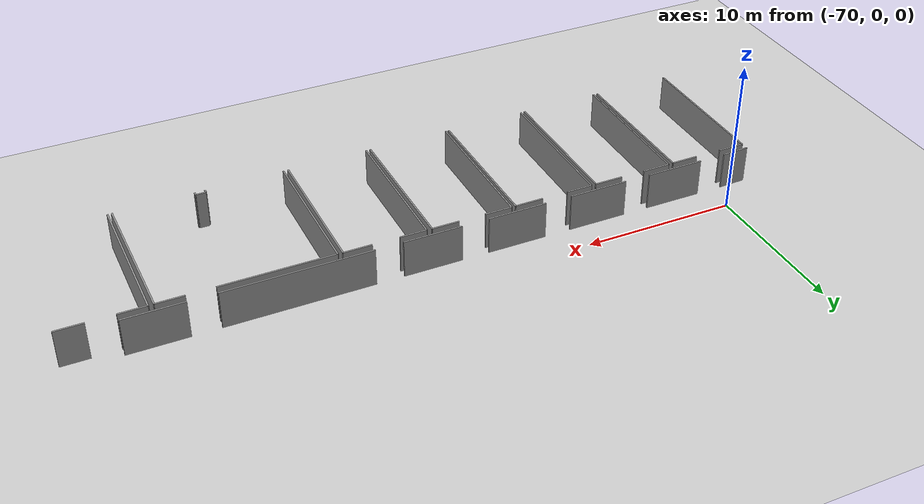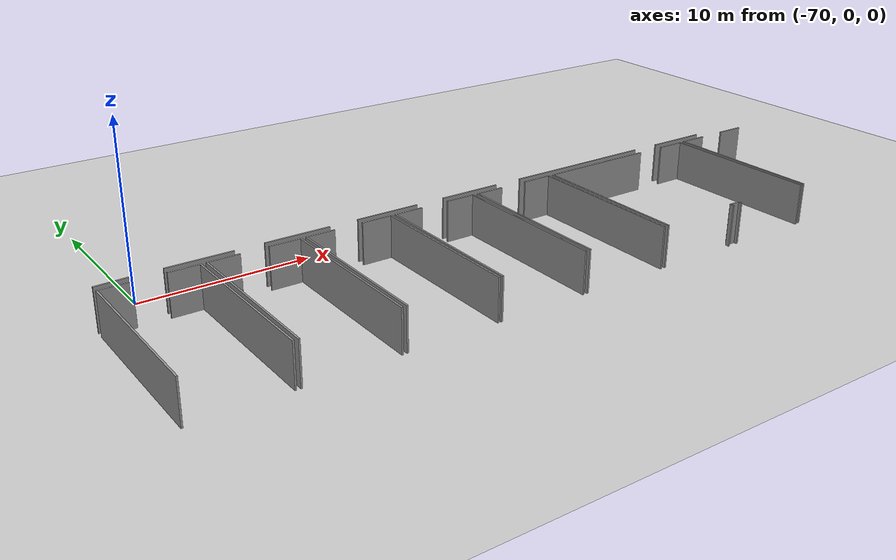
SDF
<sdf version="1.6">
 <world name="default">
  <model name="ground_plane">
   <static>1</static>
   <link name="link">
    <collision name="collision">
     <geometry><plane><normal>0 0 1</normal><size>100 100</size></plane></geometry>
     <surface><friction><ode><mu>100</mu><mu2>50</mu2></ode></friction></surface>
    </collision>
    <visual name="visual">
     <cast_shadows>0</cast_shadows>
     <geometry><plane><normal>0 0 1</normal><size>100 100</size></plane></geometry>
     <material>
      <script><uri>file://media/materials/scripts/gazebo.material</uri><name>Gazebo/Grey</name></script>
     </material>
    </visual>
   </link>
  </model>
  <model name="0510045907_A_40_1_105">
   <static>1</static>
   <link name="Wall_53">
    <collision name="Wall_53_Collision">
     <geometry><box><size>3.80115771301 0.1 2.5</size></box></geometry>
     <pose>1.9005788565 0 1.25 0 0 0</pose>
    </collision>
    <visual name="Wall_53_Visual">
     <pose>1.9005788565 0 1.25 0 0 0</pose>
     <geometry><box><size>3.80115771301 0.1 2.5</size></box></geometry>
     <material>
      <script><uri>file://media/materials/scripts/gazebo.material</uri><name>Gazebo/Grey</name></script>
      <ambient>1 1 1 1</ambient>
     </material>
    </visual>
    <pose>52.0079719712 -14.2241291764 0 0 0 3.14159265359</pose>
   </link>
   <link name="Wall_54">
    <collision name="Wall_54_Collision">
     <geometry><box><size>9.44120036559 0.1 2.5</size></box></geometry>
     <pose>4.7206001828 0 1.25 0 0 0</pose>
    </collision>
    <visual name="Wall_54_Visual">
     <pose>4.7206001828 0 1.25 0 0 0</pose>
     <geometry><box><size>9.44120036559 0.1 2.5</size></box></geometry>
     <material>
      <script><uri>file://media/materials/scripts/gazebo.material</uri><name>Gazebo/Grey</name></script>
      <ambient>1 1 1 1</ambient>
     </material>
    </visual>
    <pose>46.4032192546 -14.2241291764 0 0 0 3.14159265359</pose>
   </link>
   <link name="Wall_55">
    <collision name="Wall_55_Collision">
     <geometry><box><size>3.80090382858 0.1 2.5</size></box></geometry>
     <pose>1.90045191429 0 1.25 0 0 0</pose>
    </collision>
    <visual name="Wall_55_Visual">
     <pose>1.90045191429 0 1.25 0 0 0</pose>
     <geometry><box><size>3.80090382858 0.1 2.5</size></box></geometry>
     <material>
      <script><uri>file://media/materials/scripts/gazebo.material</uri><name>Gazebo/Grey</name></script>
      <ambient>1 1 1 1</ambient>
     </material>
    </visual>
    <pose>35.1909210927 -14.2241291764 0 0 0 3.14159265359</pose>
   </link>
   <link name="Wall_56">
    <collision name="Wall_56_Collision">
     <geometry><box><size>3.87275312278 0.1 2.5</size></box></geometry>
     <pose>1.93637656139 0 1.25 0 0 0</pose>
    </collision>
    <visual name="Wall_56_Visual">
     <pose>1.93637656139 0 1.25 0 0 0</pose>
     <geometry><box><size>3.87275312278 0.1 2.5</size></box></geometry>
     <material>
      <script><uri>file://media/materials/scripts/gazebo.material</uri><name>Gazebo/Grey</name></script>
      <ambient>1 1 1 1</ambient>
     </material>
    </visual>
    <pose>29.6095257439 -14.2241291764 0 0 0 3.14159265359</pose>
   </link>
   <link name="Wall_57">
    <collision name="Wall_57_Collision">
     <geometry><box><size>3.87783081141 0.1 2.5</size></box></geometry>
     <pose>1.93891540571 0 1.25 0 0 0</pose>
    </collision>
    <visual name="Wall_57_Visual">
     <pose>1.93891540571 0 1.25 0 0 0</pose>
     <geometry><box><size>3.87783081141 0.1 2.5</size></box></geometry>
     <material>
      <script><uri>file://media/materials/scripts/gazebo.material</uri><name>Gazebo/Grey</name></script>
      <ambient>1 1 1 1</ambient>
     </material>
    </visual>
    <pose>23.9989336854 -14.2241291764 0 0 0 3.14159265359</pose>
   </link>
   <link name="Wall_58">
    <collision name="Wall_58_Collision">
     <geometry><box><size>3.80090382858 0.1 2.5</size></box></geometry>
     <pose>1.90045191429 0 1.25 0 0 0</pose>
    </collision>
    <visual name="Wall_58_Visual">
     <pose>1.90045191429 0 1.25 0 0 0</pose>
     <geometry><box><size>3.80090382858 0.1 2.5</size></box></geometry>
     <material>
      <script><uri>file://media/materials/scripts/gazebo.material</uri><name>Gazebo/Grey</name></script>
      <ambient>1 1 1 1</ambient>
     </material>
    </visual>
    <pose>18.4124606479 -14.2241291764 0 0 0 3.14159265359</pose>
   </link>
   <link name="Wall_59">
    <collision name="Wall_59_Collision">
     <geometry><box><size>1.81741026124 0.1 2.5</size></box></geometry>
     <pose>0.90870513062 0 1.25 0 0 0</pose>
    </collision>
    <visual name="Wall_59_Visual">
     <pose>0.90870513062 0 1.25 0 0 0</pose>
     <geometry><box><size>1.81741026124 0.1 2.5</size></box></geometry>
     <material>
      <script><uri>file://media/materials/scripts/gazebo.material</uri><name>Gazebo/Grey</name></script>
      <ambient>1 1 1 1</ambient>
     </material>
    </visual>
    <pose>12.8429978674 -14.2241291764 0 0 0 -3.09925220137</pose>
   </link>
   <link name="Wall_60">
    <collision name="Wall_60_Collision">
     <geometry><box><size>9.62399715649 0.1 2.5</size></box></geometry>
     <pose>4.81199857825 0 1.25 0 0 0</pose>
    </collision>
    <visual name="Wall_60_Visual">
     <pose>4.81199857825 0 1.25 0 0 0</pose>
     <geometry><box><size>9.62399715649 0.1 2.5</size></box></geometry>
     <material>
      <script><uri>file://media/materials/scripts/gazebo.material</uri><name>Gazebo/Grey</name></script>
      <ambient>1 1 1 1</ambient>
     </material>
    </visual>
    <pose>11.0599675028 -24.3960089367 0 0 0 1.57079632679</pose>
   </link>
   <link name="Wall_61">
    <collision name="Wall_61_Collision">
     <geometry><box><size>1.75180257947 0.1 2.5</size></box></geometry>
     <pose>0.875901289733 0 1.25 0 0 0</pose>
    </collision>
    <visual name="Wall_61_Visual">
     <pose>0.875901289733 0 1.25 0 0 0</pose>
     <geometry><box><size>1.75180257947 0.1 2.5</size></box></geometry>
     <material>
      <script><uri>file://media/materials/scripts/gazebo.material</uri><name>Gazebo/Grey</name></script>
      <ambient>1 1 1 1</ambient>
     </material>
    </visual>
    <pose>11.0599675028 -14.7720117802 0 0 0 0.0</pose>
   </link>
   <link name="Wall_62">
    <collision name="Wall_62_Collision">
     <geometry><box><size>1.76602010765 0.1 2.5</size></box></geometry>
     <pose>0.883010053823 0 1.25 0 0 0</pose>
    </collision>
    <visual name="Wall_62_Visual">
     <pose>0.883010053823 0 1.25 0 0 0</pose>
     <geometry><box><size>1.76602010765 0.1 2.5</size></box></geometry>
     <material>
      <script><uri>file://media/materials/scripts/gazebo.material</uri><name>Gazebo/Grey</name></script>
      <ambient>1 1 1 1</ambient>
     </material>
    </visual>
    <pose>14.5683964659 -14.7720117802 0 0 0 0.0</pose>
   </link>
   <link name="Wall_63">
    <collision name="Wall_63_Collision">
     <geometry><box><size>9.6241180467 0.1 2.5</size></box></geometry>
     <pose>4.81205902335 0 1.25 0 0 0</pose>
    </collision>
    <visual name="Wall_63_Visual">
     <pose>4.81205902335 0 1.25 0 0 0</pose>
     <geometry><box><size>9.6241180467 0.1 2.5</size></box></geometry>
     <material>
      <script><uri>file://media/materials/scripts/gazebo.material</uri><name>Gazebo/Grey</name></script>
      <ambient>1 1 1 1</ambient>
     </material>
    </visual>
    <pose>16.3344165736 -14.7720117802 0 0 0 -1.5657841019</pose>
   </link>
   <link name="Wall_64">
    <collision name="Wall_64_Collision">
     <geometry><box><size>9.65624047933 0.1 2.5</size></box></geometry>
     <pose>4.82812023967 0 1.25 0 0 0</pose>
    </collision>
    <visual name="Wall_64_Visual">
     <pose>4.82812023967 0 1.25 0 0 0</pose>
     <geometry><box><size>9.65624047933 0.1 2.5</size></box></geometry>
     <material>
      <script><uri>file://media/materials/scripts/gazebo.material</uri><name>Gazebo/Grey</name></script>
      <ambient>1 1 1 1</ambient>
     </material>
    </visual>
    <pose>16.6687823703 -24.4104803493 0 0 0 1.57079632679</pose>
   </link>
   <link name="Wall_65">
    <collision name="Wall_65_Collision">
     <geometry><box><size>1.82365187367 0.1 2.5</size></box></geometry>
     <pose>0.911825936834 0 1.25 0 0 0</pose>
    </collision>
    <visual name="Wall_65_Visual">
     <pose>0.911825936834 0 1.25 0 0 0</pose>
     <geometry><box><size>1.82365187367 0.1 2.5</size></box></geometry>
     <material>
      <script><uri>file://media/materials/scripts/gazebo.material</uri><name>Gazebo/Grey</name></script>
      <ambient>1 1 1 1</ambient>
     </material>
    </visual>
    <pose>16.6687823703 -14.75423987 0 0 0 0.0</pose>
   </link>
   <link name="Wall_66">
    <collision name="Wall_66_Collision">
     <geometry><box><size>1.85437188992 0.1 2.5</size></box></geometry>
     <pose>0.927185944958 0 1.25 0 0 0</pose>
    </collision>
    <visual name="Wall_66_Visual">
     <pose>0.927185944958 0 1.25 0 0 0</pose>
     <geometry><box><size>1.85437188992 0.1 2.5</size></box></geometry>
     <material>
      <script><uri>file://media/materials/scripts/gazebo.material</uri><name>Gazebo/Grey</name></script>
      <ambient>1 1 1 1</ambient>
     </material>
    </visual>
    <pose>20.1096780745 -14.75423987 0 0 0 0.0</pose>
   </link>
   <link name="Wall_67">
    <collision name="Wall_67_Collision">
     <geometry><box><size>9.65626516418 0.1 2.5</size></box></geometry>
     <pose>4.82813258209 0 1.25 0 0 0</pose>
    </collision>
    <visual name="Wall_67_Visual">
     <pose>4.82813258209 0 1.25 0 0 0</pose>
     <geometry><box><size>9.65626516418 0.1 2.5</size></box></geometry>
     <material>
      <script><uri>file://media/materials/scripts/gazebo.material</uri><name>Gazebo/Grey</name></script>
      <ambient>1 1 1 1</ambient>
     </material>
    </visual>
    <pose>21.9640499645 -14.75423987 0 0 0 -1.56853519587</pose>
   </link>
   <link name="Wall_68">
    <collision name="Wall_68_Collision">
     <geometry><box><size>9.63973799127 0.1 2.5</size></box></geometry>
     <pose>4.81986899563 0 1.25 0 0 0</pose>
    </collision>
    <visual name="Wall_68_Visual">
     <pose>4.81986899563 0 1.25 0 0 0</pose>
     <geometry><box><size>9.63973799127 0.1 2.5</size></box></geometry>
     <material>
      <script><uri>file://media/materials/scripts/gazebo.material</uri><name>Gazebo/Grey</name></script>
      <ambient>1 1 1 1</ambient>
     </material>
    </visual>
    <pose>22.2775972377 -24.3889001726 0 0 0 1.57079632679</pose>
   </link>
   <link name="Wall_69">
    <collision name="Wall_69_Collision">
     <geometry><box><size>1.71702041231 0.1 2.5</size></box></geometry>
     <pose>0.858510206154 0 1.25 0 0 0</pose>
    </collision>
    <visual name="Wall_69_Visual">
     <pose>0.858510206154 0 1.25 0 0 0</pose>
     <geometry><box><size>1.71702041231 0.1 2.5</size></box></geometry>
     <material>
      <script><uri>file://media/materials/scripts/gazebo.material</uri><name>Gazebo/Grey</name></script>
      <ambient>1 1 1 1</ambient>
     </material>
    </visual>
    <pose>22.2775972377 -14.7491621814 0 0 0 0.0</pose>
   </link>
   <link name="Wall_70">
    <collision name="Wall_70_Collision">
     <geometry><box><size>1.84396262821 0.1 2.5</size></box></geometry>
     <pose>0.921981314106 0 1.25 0 0 0</pose>
    </collision>
    <visual name="Wall_70_Visual">
     <pose>0.921981314106 0 1.25 0 0 0</pose>
     <geometry><box><size>1.84396262821 0.1 2.5</size></box></geometry>
     <material>
      <script><uri>file://media/materials/scripts/gazebo.material</uri><name>Gazebo/Grey</name></script>
      <ambient>1 1 1 1</ambient>
     </material>
    </visual>
    <pose>25.7131613689 -14.7491621814 0 0 0 0.0</pose>
   </link>
   <link name="Wall_71">
    <collision name="Wall_71_Collision">
     <geometry><box><size>9.63996399651 0.1 2.5</size></box></geometry>
     <pose>4.81998199826 0 1.25 0 0 0</pose>
    </collision>
    <visual name="Wall_71_Visual">
     <pose>4.81998199826 0 1.25 0 0 0</pose>
     <geometry><box><size>9.63996399651 0.1 2.5</size></box></geometry>
     <material>
      <script><uri>file://media/materials/scripts/gazebo.material</uri><name>Gazebo/Grey</name></script>
      <ambient>1 1 1 1</ambient>
     </material>
    </visual>
    <pose>27.5571239972 -14.7491621814 0 0 0 -1.56394874229</pose>
   </link>
   <link name="Wall_72">
    <collision name="Wall_72_Collision">
     <geometry><box><size>9.64887783081 0.1 2.5</size></box></geometry>
     <pose>4.82443891541 0 1.25 0 0 0</pose>
    </collision>
    <visual name="Wall_72_Visual">
     <pose>4.82443891541 0 1.25 0 0 0</pose>
     <geometry><box><size>9.64887783081 0.1 2.5</size></box></geometry>
     <material>
      <script><uri>file://media/materials/scripts/gazebo.material</uri><name>Gazebo/Grey</name></script>
      <ambient>1 1 1 1</ambient>
     </material>
    </visual>
    <pose>27.833350259 -24.3980400122 0 0 0 1.57079632679</pose>
   </link>
   <link name="Wall_73">
    <collision name="Wall_73_Collision">
     <geometry><box><size>1.75434142378 0.1 2.5</size></box></geometry>
     <pose>0.877170711892 0 1.25 0 0 0</pose>
    </collision>
    <visual name="Wall_73_Visual">
     <pose>0.877170711892 0 1.25 0 0 0</pose>
     <geometry><box><size>1.75434142378 0.1 2.5</size></box></geometry>
     <material>
      <script><uri>file://media/materials/scripts/gazebo.material</uri><name>Gazebo/Grey</name></script>
      <ambient>1 1 1 1</ambient>
     </material>
    </visual>
    <pose>27.833350259 -14.7491621814 0 0 0 0.0</pose>
   </link>
   <link name="Wall_74">
    <collision name="Wall_74_Collision">
     <geometry><box><size>1.77515994719 0.1 2.5</size></box></geometry>
     <pose>0.887579973596 0 1.25 0 0 0</pose>
    </collision>
    <visual name="Wall_74_Visual">
     <pose>0.887579973596 0 1.25 0 0 0</pose>
     <geometry><box><size>1.77515994719 0.1 2.5</size></box></geometry>
     <material>
      <script><uri>file://media/materials/scripts/gazebo.material</uri><name>Gazebo/Grey</name></script>
      <ambient>1 1 1 1</ambient>
     </material>
    </visual>
    <pose>31.344064182 -14.7491621814 0 0 0 0.0</pose>
   </link>
   <link name="Wall_75">
    <collision name="Wall_75_Collision">
     <geometry><box><size>9.64902513009 0.1 2.5</size></box></geometry>
     <pose>4.82451256504 0 1.25 0 0 0</pose>
    </collision>
    <visual name="Wall_75_Visual">
     <pose>4.82451256504 0 1.25 0 0 0</pose>
     <geometry><box><size>9.64902513009 0.1 2.5</size></box></geometry>
     <material>
      <script><uri>file://media/materials/scripts/gazebo.material</uri><name>Gazebo/Grey</name></script>
      <ambient>1 1 1 1</ambient>
     </material>
    </visual>
    <pose>33.1192241292 -14.7491621814 0 0 0 -1.56527079429</pose>
   </link>
   <link name="Wall_76">
    <collision name="Wall_76_Collision">
     <geometry><box><size>9.62298161877 0.1 2.5</size></box></geometry>
     <pose>4.81149080938 0 1.25 0 0 0</pose>
    </collision>
    <visual name="Wall_76_Visual">
     <pose>4.81149080938 0 1.25 0 0 0</pose>
     <geometry><box><size>9.62298161877 0.1 2.5</size></box></geometry>
     <material>
      <script><uri>file://media/materials/scripts/gazebo.material</uri><name>Gazebo/Grey</name></script>
      <ambient>1 1 1 1</ambient>
     </material>
    </visual>
    <pose>33.4622219965 -24.3960089367 0 0 0 1.57079632679</pose>
   </link>
   <link name="Wall_77">
    <collision name="Wall_77_Collision">
     <geometry><box><size>1.73428455367 0.1 2.5</size></box></geometry>
     <pose>0.867142276836 0 1.25 0 0 0</pose>
    </collision>
    <visual name="Wall_77_Visual">
     <pose>0.867142276836 0 1.25 0 0 0</pose>
     <geometry><box><size>1.73428455367 0.1 2.5</size></box></geometry>
     <material>
      <script><uri>file://media/materials/scripts/gazebo.material</uri><name>Gazebo/Grey</name></script>
      <ambient>1 1 1 1</ambient>
     </material>
    </visual>
    <pose>33.4622219965 -14.773027318 0 0 0 0.0</pose>
   </link>
   <link name="Wall_78">
    <collision name="Wall_78_Collision">
     <geometry><box><size>1.82923733117 0.1 2.5</size></box></geometry>
     <pose>0.914618665583 0 1.25 0 0 0</pose>
    </collision>
    <visual name="Wall_78_Visual">
     <pose>0.914618665583 0 1.25 0 0 0</pose>
     <geometry><box><size>1.82923733117 0.1 2.5</size></box></geometry>
     <material>
      <script><uri>file://media/materials/scripts/gazebo.material</uri><name>Gazebo/Grey</name></script>
      <ambient>1 1 1 1</ambient>
     </material>
    </visual>
    <pose>36.9371382147 -14.773027318 0 0 0 0.0</pose>
   </link>
   <link name="Wall_79">
    <collision name="Wall_79_Collision">
     <geometry><box><size>9.62298161877 0.1 2.5</size></box></geometry>
     <pose>4.81149080938 0 1.25 0 0 0</pose>
    </collision>
    <visual name="Wall_79_Visual">
     <pose>4.81149080938 0 1.25 0 0 0</pose>
     <geometry><box><size>9.62298161877 0.1 2.5</size></box></geometry>
     <material>
      <script><uri>file://media/materials/scripts/gazebo.material</uri><name>Gazebo/Grey</name></script>
      <ambient>1 1 1 1</ambient>
     </material>
    </visual>
    <pose>38.7663755459 -14.773027318 0 0 0 -1.57079632679</pose>
   </link>
   <link name="Wall_80">
    <collision name="Wall_80_Collision">
     <geometry><box><size>0.233827561694 0.1 2.5</size></box></geometry>
     <pose>0.116913780847 0 1.25 0 0 0</pose>
    </collision>
    <visual name="Wall_80_Visual">
     <pose>0.116913780847 0 1.25 0 0 0</pose>
     <geometry><box><size>0.233827561694 0.1 2.5</size></box></geometry>
     <material>
      <script><uri>file://media/materials/scripts/gazebo.material</uri><name>Gazebo/Grey</name></script>
      <ambient>1 1 1 1</ambient>
     </material>
    </visual>
    <pose>44.8339595816 -24.3889001726 0 0 0 1.57079632679</pose>
   </link>
   <link name="Wall_81">
    <collision name="Wall_81_Collision">
     <geometry><box><size>0.651213567584 0.1 2.5</size></box></geometry>
     <pose>0.325606783792 0 1.25 0 0 0</pose>
    </collision>
    <visual name="Wall_81_Visual">
     <pose>0.325606783792 0 1.25 0 0 0</pose>
     <geometry><box><size>0.651213567584 0.1 2.5</size></box></geometry>
     <material>
      <script><uri>file://media/materials/scripts/gazebo.material</uri><name>Gazebo/Grey</name></script>
      <ambient>1 1 1 1</ambient>
     </material>
    </visual>
    <pose>44.8339595816 -24.1550726109 0 0 0 3.14159265359</pose>
   </link>
   <link name="Wall_82">
    <collision name="Wall_82_Collision">
     <geometry><box><size>0.233827561694 0.1 2.5</size></box></geometry>
     <pose>0.116913780847 0 1.25 0 0 0</pose>
    </collision>
    <visual name="Wall_82_Visual">
     <pose>0.116913780847 0 1.25 0 0 0</pose>
     <geometry><box><size>0.233827561694 0.1 2.5</size></box></geometry>
     <material>
      <script><uri>file://media/materials/scripts/gazebo.material</uri><name>Gazebo/Grey</name></script>
      <ambient>1 1 1 1</ambient>
     </material>
    </visual>
    <pose>44.182746014 -24.1550726109 0 0 0 -1.57079632679</pose>
   </link>
   <link name="Wall_83">
    <collision name="Wall_83_Collision">
     <geometry><box><size>9.6016553265 0.1 2.5</size></box></geometry>
     <pose>4.80082766325 0 1.25 0 0 0</pose>
    </collision>
    <visual name="Wall_83_Visual">
     <pose>4.80082766325 0 1.25 0 0 0</pose>
     <geometry><box><size>9.6016553265 0.1 2.5</size></box></geometry>
     <material>
      <script><uri>file://media/materials/scripts/gazebo.material</uri><name>Gazebo/Grey</name></script>
      <ambient>1 1 1 1</ambient>
     </material>
    </visual>
    <pose>39.082207779 -24.3889001726 0 0 0 1.57079632679</pose>
   </link>
   <link name="Wall_84">
    <collision name="Wall_84_Collision">
     <geometry><box><size>7.26566466944 0.1 2.5</size></box></geometry>
     <pose>3.63283233472 0 1.25 0 0 0</pose>
    </collision>
    <visual name="Wall_84_Visual">
     <pose>3.63283233472 0 1.25 0 0 0</pose>
     <geometry><box><size>7.26566466944 0.1 2.5</size></box></geometry>
     <material>
      <script><uri>file://media/materials/scripts/gazebo.material</uri><name>Gazebo/Grey</name></script>
      <ambient>1 1 1 1</ambient>
     </material>
    </visual>
    <pose>39.082207779 -14.7872448461 0 0 0 0.0</pose>
   </link>
   <link name="Wall_85">
    <collision name="Wall_85_Collision">
     <geometry><box><size>1.77820656037 0.1 2.5</size></box></geometry>
     <pose>0.889103280187 0 1.25 0 0 0</pose>
    </collision>
    <visual name="Wall_85_Visual">
     <pose>0.889103280187 0 1.25 0 0 0</pose>
     <geometry><box><size>1.77820656037 0.1 2.5</size></box></geometry>
     <material>
      <script><uri>file://media/materials/scripts/gazebo.material</uri><name>Gazebo/Grey</name></script>
      <ambient>1 1 1 1</ambient>
     </material>
    </visual>
    <pose>48.1263328933 -14.7872448461 0 0 0 0.0</pose>
   </link>
   <link name="Wall_86">
    <collision name="Wall_86_Collision">
     <geometry><box><size>9.6019166019 0.1 2.5</size></box></geometry>
     <pose>4.80095830095 0 1.25 0 0 0</pose>
    </collision>
    <visual name="Wall_86_Visual">
     <pose>4.80095830095 0 1.25 0 0 0</pose>
     <geometry><box><size>9.6019166019 0.1 2.5</size></box></geometry>
     <material>
      <script><uri>file://media/materials/scripts/gazebo.material</uri><name>Gazebo/Grey</name></script>
      <ambient>1 1 1 1</ambient>
     </material>
    </visual>
    <pose>49.9045394536 -14.7872448461 0 0 0 -1.56341921638</pose>
   </link>
   <link name="Wall_87">
    <collision name="Wall_87_Collision">
     <geometry><box><size>9.59429267797 0.1 2.5</size></box></geometry>
     <pose>4.79714633899 0 1.25 0 0 0</pose>
    </collision>
    <visual name="Wall_87_Visual">
     <pose>4.79714633899 0 1.25 0 0 0</pose>
     <geometry><box><size>9.59429267797 0.1 2.5</size></box></geometry>
     <material>
      <script><uri>file://media/materials/scripts/gazebo.material</uri><name>Gazebo/Grey</name></script>
      <ambient>1 1 1 1</ambient>
     </material>
    </visual>
    <pose>50.2419518635 -24.3721438001 0 0 0 1.57079632679</pose>
   </link>
   <link name="Wall_88">
    <collision name="Wall_88_Collision">
     <geometry><box><size>1.75611861481 0.1 2.5</size></box></geometry>
     <pose>0.878059307403 0 1.25 0 0 0</pose>
    </collision>
    <visual name="Wall_88_Visual">
     <pose>0.878059307403 0 1.25 0 0 0</pose>
     <geometry><box><size>1.75611861481 0.1 2.5</size></box></geometry>
     <material>
      <script><uri>file://media/materials/scripts/gazebo.material</uri><name>Gazebo/Grey</name></script>
      <ambient>1 1 1 1</ambient>
     </material>
    </visual>
    <pose>50.2419518635 -14.7778511222 0 0 0 0.0</pose>
   </link>
   <link name="Wall_89">
    <collision name="Wall_89_Collision">
     <geometry><box><size>1.77820656037 0.1 2.5</size></box></geometry>
     <pose>0.889103280187 0 1.25 0 0 0</pose>
    </collision>
    <visual name="Wall_89_Visual">
     <pose>0.889103280187 0 1.25 0 0 0</pose>
     <geometry><box><size>1.77820656037 0.1 2.5</size></box></geometry>
     <material>
      <script><uri>file://media/materials/scripts/gazebo.material</uri><name>Gazebo/Grey</name></script>
      <ambient>1 1 1 1</ambient>
     </material>
    </visual>
    <pose>53.7351477607 -14.7778511222 0 0 0 0.0</pose>
   </link>
   <pose>-83.65 12.2252056464 0 0 0 0</pose>
  </model>
 </world>
</sdf>
